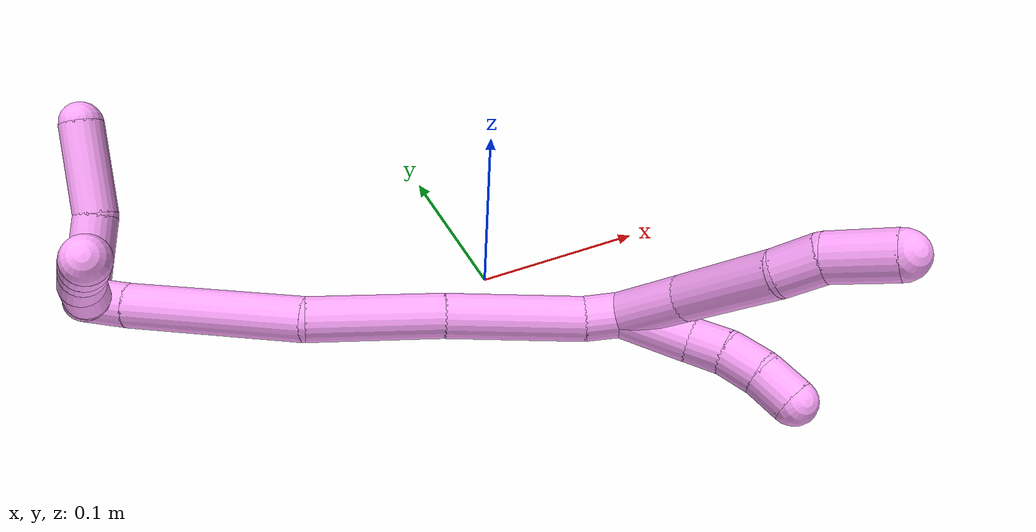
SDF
<sdf version="1.7">
 <world name="default">
  <model name="photoneo_s_sensor">
   <static>1</static>
   <pose>0 0 2 1.57079 1.57079 3.14159</pose>
   <link name="link">
    <inertial><mass>0.1</mass></inertial>
    <sensor name="sensor" type="depth">
     <update_rate>30</update_rate>
     <camera>
      <horizontal_fov>1.22</horizontal_fov>
      <image><width>1920</width><height>1200</height><format>B8G8R8</format></image>
      <clip><near>0.1</near><far>4</far></clip>
      <depth_camera><output>points</output></depth_camera>
     </camera>
     <plugin name="camera_plugin" filename="libgazebo_ros_depth_camera.so">
      <baseline>0.2</baseline>
      <alwaysOn>1</alwaysOn>
      <updateRate>0.0</updateRate>
      <cameraName>camera_ir</cameraName>
      <imageTopicName>/camera/color/image_raw</imageTopicName>
      <cameraInfoTopicName>/camera/color/camera_info</cameraInfoTopicName>
      <depthImageTopicName>/camera/depth/image_raw</depthImageTopicName>
      <depthImageCameraInfoTopicName>/camera/depth/camera_info</depthImageCameraInfoTopicName>
      <pointCloudTopicName>/camera/depth/points</pointCloudTopicName>
      <frameName>fr_optical</frameName>
      <pointCloudCutoff>0.1</pointCloudCutoff>
      <pointCloudCutoffMax>2.0</pointCloudCutoffMax>
      <distortionK1>0</distortionK1>
      <distortionK2>0</distortionK2>
      <distortionK3>0</distortionK3>
      <distortionT1>0</distortionT1>
      <distortionT2>0</distortionT2>
      <CxPrime>0</CxPrime>
      <Cx>0</Cx>
      <Cy>0</Cy>
      <focalLength>0</focalLength>
      <hackBaseline>0</hackBaseline>
     </plugin>
    </sensor>
   </link>
  </model>
  <model name="bin">
   <static>1</static>
   <link name="bottom">
    <collision name="collision-bottom">
     <pose>0 0 -0.01 0 -0 0</pose>
     <geometry><box><size>0.8 0.6 0.02</size></box></geometry>
     <surface>
      <friction><ode><mu>100</mu><mu2>100</mu2></ode></friction>
      <contact><collide_bitmask>65535</collide_bitmask></contact>
     </surface>
    </collision>
   </link>
   <link name="west_wall">
    <collision name="collision-west_wall">
     <pose>-0.41 0 0.1 0 -0 0</pose>
     <geometry><box><size>0.02 0.6 0.2</size></box></geometry>
     <surface>
      <friction><ode><mu>100</mu><mu2>100</mu2></ode></friction>
      <contact><collide_bitmask>65535</collide_bitmask></contact>
     </surface>
    </collision>
   </link>
   <link name="east_wall">
    <collision name="collision-east_wall">
     <pose>0.41 0 0.1 0 -0 0</pose>
     <geometry><box><size>0.02 0.6 0.2</size></box></geometry>
     <surface>
      <friction><ode><mu>100</mu><mu2>100</mu2></ode></friction>
      <contact><collide_bitmask>65535</collide_bitmask></contact>
     </surface>
    </collision>
   </link>
   <link name="south_wall">
    <collision name="collision-south_wall">
     <pose>0 -0.31 0.1 0 -0 0</pose>
     <geometry><box><size>0.8 0.02 0.2</size></box></geometry>
     <surface>
      <friction><ode><mu>100</mu><mu2>100</mu2></ode></friction>
      <contact><collide_bitmask>65535</collide_bitmask></contact>
     </surface>
    </collision>
   </link>
   <link name="north_wall">
    <collision name="collision-north_wall">
     <pose>0 0.31 0.1 0 -0 0</pose>
     <geometry><box><size>0.8 0.02 0.2</size></box></geometry>
     <surface>
      <friction><ode><mu>100</mu><mu2>100</mu2></ode></friction>
      <contact><collide_bitmask>65535</collide_bitmask></contact>
     </surface>
    </collision>
   </link>
  </model>
  <model name="4">
   <static>0</static>
   <link name="4">
    <collision name="collision-cylinder-e_1_2_8">
     <pose>0.006401 -0.008737 -0.016509 2.65485 0.330153 1.18193</pose>
     <geometry><cylinder><radius>0.0125</radius><length>0.03949</length></cylinder></geometry>
     <surface>
      <friction><ode><mu>1.16</mu><mu2>1.16</mu2><slip1>0</slip1><slip2>0</slip2></ode></friction>
      <contact><ode><kp>1e+06</kp><kd>1</kd><max_vel>0</max_vel><min_depth>0.001</min_depth></ode></contact>
     </surface>
    </collision>
    <visual name="visual-cylinder-e_1_2_8">
     <pose>0.006401 -0.008737 -0.016509 2.65485 0.330153 1.18193</pose>
     <geometry><cylinder><radius>0.0125</radius><length>0.03949</length></cylinder></geometry>
     <material><ambient>1 0.65098 0.996078 1</ambient></material>
    </visual>
    <collision name="collision-cylinder-e_2_8_9">
     <pose>0.020108 -0.02695 -0.057868 2.77726 0.268086 1.26384</pose>
     <geometry><cylinder><radius>0.0125</radius><length>0.055161</length></cylinder></geometry>
     <surface>
      <friction><ode><mu>1.16</mu><mu2>1.16</mu2><slip1>0</slip1><slip2>0</slip2></ode></friction>
      <contact><ode><kp>1e+06</kp><kd>1</kd><max_vel>0</max_vel><min_depth>0.001</min_depth></ode></contact>
     </surface>
    </collision>
    <visual name="visual-cylinder-e_2_8_9">
     <pose>0.020108 -0.02695 -0.057868 2.77726 0.268086 1.26384</pose>
     <geometry><cylinder><radius>0.0125</radius><length>0.055161</length></cylinder></geometry>
     <material><ambient>1 0.65098 0.996078 1</ambient></material>
    </visual>
    <collision name="collision-cylinder-e_3_9_10">
     <pose>0.030768 -0.042464 -0.091494 2.53907 0.30507 0.918883</pose>
     <geometry><cylinder><radius>0.0125</radius><length>0.022335</length></cylinder></geometry>
     <surface>
      <friction><ode><mu>1.16</mu><mu2>1.16</mu2><slip1>0</slip1><slip2>0</slip2></ode></friction>
      <contact><ode><kp>1e+06</kp><kd>1</kd><max_vel>0</max_vel><min_depth>0.001</min_depth></ode></contact>
     </surface>
    </collision>
    <visual name="visual-cylinder-e_3_9_10">
     <pose>0.030768 -0.042464 -0.091494 2.53907 0.30507 0.918883</pose>
     <geometry><cylinder><radius>0.0125</radius><length>0.022335</length></cylinder></geometry>
     <material><ambient>1 0.65098 0.996078 1</ambient></material>
    </visual>
    <collision name="collision-cylinder-e_4_10_6">
     <pose>0.043441 -0.055069 -0.112207 2.6385 0.599859 1.75489</pose>
     <geometry><cylinder><radius>0.0125</radius><length>0.033014</length></cylinder></geometry>
     <surface>
      <friction><ode><mu>1.16</mu><mu2>1.16</mu2><slip1>0</slip1><slip2>0</slip2></ode></friction>
      <contact><ode><kp>1e+06</kp><kd>1</kd><max_vel>0</max_vel><min_depth>0.001</min_depth></ode></contact>
     </surface>
    </collision>
    <visual name="visual-cylinder-e_4_10_6">
     <pose>0.043441 -0.055069 -0.112207 2.6385 0.599859 1.75489</pose>
     <geometry><cylinder><radius>0.0125</radius><length>0.033014</length></cylinder></geometry>
     <material><ambient>1 0.65098 0.996078 1</ambient></material>
    </visual>
    <collision name="collision-cylinder-e_1_2_11">
     <pose>0.017269 -0.005547 -0.007539 2.50728 1.07411 2.13398</pose>
     <geometry><cylinder><radius>0.0125</radius><length>0.039285</length></cylinder></geometry>
     <surface>
      <friction><ode><mu>1.16</mu><mu2>1.16</mu2><slip1>0</slip1><slip2>0</slip2></ode></friction>
      <contact><ode><kp>1e+06</kp><kd>1</kd><max_vel>0</max_vel><min_depth>0.001</min_depth></ode></contact>
     </surface>
    </collision>
    <visual name="visual-cylinder-e_1_2_11">
     <pose>0.017269 -0.005547 -0.007539 2.50728 1.07411 2.13398</pose>
     <geometry><cylinder><radius>0.0125</radius><length>0.039285</length></cylinder></geometry>
     <material><ambient>1 0.65098 0.996078 1</ambient></material>
    </visual>
    <collision name="collision-cylinder-e_2_11_12">
     <pose>0.042304 -0.012805 -0.02132 2.874 0.876086 2.58194</pose>
     <geometry><cylinder><radius>0.0125</radius><length>0.020218</length></cylinder></geometry>
     <surface>
      <friction><ode><mu>1.16</mu><mu2>1.16</mu2><slip1>0</slip1><slip2>0</slip2></ode></friction>
      <contact><ode><kp>1e+06</kp><kd>1</kd><max_vel>0</max_vel><min_depth>0.001</min_depth></ode></contact>
     </surface>
    </collision>
    <visual name="visual-cylinder-e_2_11_12">
     <pose>0.042304 -0.012805 -0.02132 2.874 0.876086 2.58194</pose>
     <geometry><cylinder><radius>0.0125</radius><length>0.020218</length></cylinder></geometry>
     <material><ambient>1 0.65098 0.996078 1</ambient></material>
    </visual>
    <collision name="collision-cylinder-e_3_12_13">
     <pose>0.058442 -0.014179 -0.033355 -3.08356 0.964599 -3.03082</pose>
     <geometry><cylinder><radius>0.0125</radius><length>0.020373</length></cylinder></geometry>
     <surface>
      <friction><ode><mu>1.16</mu><mu2>1.16</mu2><slip1>0</slip1><slip2>0</slip2></ode></friction>
      <contact><ode><kp>1e+06</kp><kd>1</kd><max_vel>0</max_vel><min_depth>0.001</min_depth></ode></contact>
     </surface>
    </collision>
    <visual name="visual-cylinder-e_3_12_13">
     <pose>0.058442 -0.014179 -0.033355 -3.08356 0.964599 -3.03082</pose>
     <geometry><cylinder><radius>0.0125</radius><length>0.020373</length></cylinder></geometry>
     <material><ambient>1 0.65098 0.996078 1</ambient></material>
    </visual>
    <collision name="collision-cylinder-e_4_13_5">
     <pose>0.075723 -0.012141 -0.043504 -2.76914 1.08756 -2.5374</pose>
     <geometry><cylinder><radius>0.0125</radius><length>0.020124</length></cylinder></geometry>
     <surface>
      <friction><ode><mu>1.16</mu><mu2>1.16</mu2><slip1>0</slip1><slip2>0</slip2></ode></friction>
      <contact><ode><kp>1e+06</kp><kd>1</kd><max_vel>0</max_vel><min_depth>0.001</min_depth></ode></contact>
     </surface>
    </collision>
    <visual name="visual-cylinder-e_4_13_5">
     <pose>0.075723 -0.012141 -0.043504 -2.76914 1.08756 -2.5374</pose>
     <geometry><cylinder><radius>0.0125</radius><length>0.020124</length></cylinder></geometry>
     <material><ambient>1 0.65098 0.996078 1</ambient></material>
    </visual>
    <collision name="collision-cylinder-e_1_2_14">
     <pose>-0.006287 0.006942 0.003644 -1.08746 -0.675884 0.418653</pose>
     <geometry><cylinder><radius>0.0125</radius><length>0.0201</length></cylinder></geometry>
     <surface>
      <friction><ode><mu>1.16</mu><mu2>1.16</mu2><slip1>0</slip1><slip2>0</slip2></ode></friction>
      <contact><ode><kp>1e+06</kp><kd>1</kd><max_vel>0</max_vel><min_depth>0.001</min_depth></ode></contact>
     </surface>
    </collision>
    <visual name="visual-cylinder-e_1_2_14">
     <pose>-0.006287 0.006942 0.003644 -1.08746 -0.675884 0.418653</pose>
     <geometry><cylinder><radius>0.0125</radius><length>0.0201</length></cylinder></geometry>
     <material><ambient>1 0.65098 0.996078 1</ambient></material>
    </visual>
    <collision name="collision-cylinder-e_2_14_15">
     <pose>-0.040895 0.038512 0.014761 -1.27616 -0.833169 0.634116</pose>
     <geometry><cylinder><radius>0.0125</radius><length>0.076536</length></cylinder></geometry>
     <surface>
      <friction><ode><mu>1.16</mu><mu2>1.16</mu2><slip1>0</slip1><slip2>0</slip2></ode></friction>
      <contact><ode><kp>1e+06</kp><kd>1</kd><max_vel>0</max_vel><min_depth>0.001</min_depth></ode></contact>
     </surface>
    </collision>
    <visual name="visual-cylinder-e_2_14_15">
     <pose>-0.040895 0.038512 0.014761 -1.27616 -0.833169 0.634116</pose>
     <geometry><cylinder><radius>0.0125</radius><length>0.076536</length></cylinder></geometry>
     <material><ambient>1 0.65098 0.996078 1</ambient></material>
    </visual>
    <collision name="collision-cylinder-e_3_15_16">
     <pose>-0.095945 0.089631 0.026337 -1.41717 -0.783949 0.680969</pose>
     <geometry><cylinder><radius>0.0125</radius><length>0.075712</length></cylinder></geometry>
     <surface>
      <friction><ode><mu>1.16</mu><mu2>1.16</mu2><slip1>0</slip1><slip2>0</slip2></ode></friction>
      <contact><ode><kp>1e+06</kp><kd>1</kd><max_vel>0</max_vel><min_depth>0.001</min_depth></ode></contact>
     </surface>
    </collision>
    <visual name="visual-cylinder-e_3_15_16">
     <pose>-0.095945 0.089631 0.026337 -1.41717 -0.783949 0.680969</pose>
     <geometry><cylinder><radius>0.0125</radius><length>0.075712</length></cylinder></geometry>
     <material><ambient>1 0.65098 0.996078 1</ambient></material>
    </visual>
    <collision name="collision-cylinder-e_4_16_17">
     <pose>-0.160975 0.143914 0.048708 -0.989299 -0.85573 0.482376</pose>
     <geometry><cylinder><radius>0.0125</radius><length>0.101449</length></cylinder></geometry>
     <surface>
      <friction><ode><mu>1.16</mu><mu2>1.16</mu2><slip1>0</slip1><slip2>0</slip2></ode></friction>
      <contact><ode><kp>1e+06</kp><kd>1</kd><max_vel>0</max_vel><min_depth>0.001</min_depth></ode></contact>
     </surface>
    </collision>
    <visual name="visual-cylinder-e_4_16_17">
     <pose>-0.160975 0.143914 0.048708 -0.989299 -0.85573 0.482376</pose>
     <geometry><cylinder><radius>0.0125</radius><length>0.101449</length></cylinder></geometry>
     <material><ambient>1 0.65098 0.996078 1</ambient></material>
    </visual>
    <collision name="collision-cylinder-e_5_17_1">
     <pose>-0.209659 0.178491 0.071192 -1.01477 -0.915111 0.534398</pose>
     <geometry><cylinder><radius>0.0125</radius><length>0.026203</length></cylinder></geometry>
     <surface>
      <friction><ode><mu>1.16</mu><mu2>1.16</mu2><slip1>0</slip1><slip2>0</slip2></ode></friction>
      <contact><ode><kp>1e+06</kp><kd>1</kd><max_vel>0</max_vel><min_depth>0.001</min_depth></ode></contact>
     </surface>
    </collision>
    <visual name="visual-cylinder-e_5_17_1">
     <pose>-0.209659 0.178491 0.071192 -1.01477 -0.915111 0.534398</pose>
     <geometry><cylinder><radius>0.0125</radius><length>0.026203</length></cylinder></geometry>
     <material><ambient>1 0.65098 0.996078 1</ambient></material>
    </visual>
    <collision name="collision-cylinder-e_1_1_18">
     <pose>-0.218168 0.184823 0.065596 3.0955 0.18867 2.66365</pose>
     <geometry><cylinder><radius>0.0125</radius><length>0.02</length></cylinder></geometry>
     <surface>
      <friction><ode><mu>1.16</mu><mu2>1.16</mu2><slip1>0</slip1><slip2>0</slip2></ode></friction>
      <contact><ode><kp>1e+06</kp><kd>1</kd><max_vel>0</max_vel><min_depth>0.001</min_depth></ode></contact>
     </surface>
    </collision>
    <visual name="visual-cylinder-e_1_1_18">
     <pose>-0.218168 0.184823 0.065596 3.0955 0.18867 2.66365</pose>
     <geometry><cylinder><radius>0.0125</radius><length>0.02</length></cylinder></geometry>
     <material><ambient>1 0.65098 0.996078 1</ambient></material>
    </visual>
    <collision name="collision-cylinder-e_2_18_19">
     <pose>-0.217576 0.183347 0.045919 3.0382 -0.128753 -1.7889</pose>
     <geometry><cylinder><radius>0.0125</radius><length>0.02</length></cylinder></geometry>
     <surface>
      <friction><ode><mu>1.16</mu><mu2>1.16</mu2><slip1>0</slip1><slip2>0</slip2></ode></friction>
      <contact><ode><kp>1e+06</kp><kd>1</kd><max_vel>0</max_vel><min_depth>0.001</min_depth></ode></contact>
     </surface>
    </collision>
    <visual name="visual-cylinder-e_2_18_19">
     <pose>-0.217576 0.183347 0.045919 3.0382 -0.128753 -1.7889</pose>
     <geometry><cylinder><radius>0.0125</radius><length>0.02</length></cylinder></geometry>
     <material><ambient>1 0.65098 0.996078 1</ambient></material>
    </visual>
    <collision name="collision-cylinder-e_3_19_20">
     <pose>-0.21857 0.180501 0.026227 2.9582 0.029018 0.313021</pose>
     <geometry><cylinder><radius>0.0125</radius><length>0.02</length></cylinder></geometry>
     <surface>
      <friction><ode><mu>1.16</mu><mu2>1.16</mu2><slip1>0</slip1><slip2>0</slip2></ode></friction>
      <contact><ode><kp>1e+06</kp><kd>1</kd><max_vel>0</max_vel><min_depth>0.001</min_depth></ode></contact>
     </surface>
    </collision>
    <visual name="visual-cylinder-e_3_19_20">
     <pose>-0.21857 0.180501 0.026227 2.9582 0.029018 0.313021</pose>
     <geometry><cylinder><radius>0.0125</radius><length>0.02</length></cylinder></geometry>
     <material><ambient>1 0.65098 0.996078 1</ambient></material>
    </visual>
    <collision name="collision-cylinder-e_4_20_21">
     <pose>-0.21692 0.177907 0.006522 3.0637 0.13639 2.10474</pose>
     <geometry><cylinder><radius>0.0125</radius><length>0.02</length></cylinder></geometry>
     <surface>
      <friction><ode><mu>1.16</mu><mu2>1.16</mu2><slip1>0</slip1><slip2>0</slip2></ode></friction>
      <contact><ode><kp>1e+06</kp><kd>1</kd><max_vel>0</max_vel><min_depth>0.001</min_depth></ode></contact>
     </surface>
    </collision>
    <visual name="visual-cylinder-e_4_20_21">
     <pose>-0.21692 0.177907 0.006522 3.0637 0.13639 2.10474</pose>
     <geometry><cylinder><radius>0.0125</radius><length>0.02</length></cylinder></geometry>
     <material><ambient>1 0.65098 0.996078 1</ambient></material>
    </visual>
    <collision name="collision-cylinder-e_5_21_4">
     <pose>-0.214174 0.176347 -0.013227 3.06182 0.139129 2.10127</pose>
     <geometry><cylinder><radius>0.0125</radius><length>0.02</length></cylinder></geometry>
     <surface>
      <friction><ode><mu>1.16</mu><mu2>1.16</mu2><slip1>0</slip1><slip2>0</slip2></ode></friction>
      <contact><ode><kp>1e+06</kp><kd>1</kd><max_vel>0</max_vel><min_depth>0.001</min_depth></ode></contact>
     </surface>
    </collision>
    <visual name="visual-cylinder-e_5_21_4">
     <pose>-0.214174 0.176347 -0.013227 3.06182 0.139129 2.10127</pose>
     <geometry><cylinder><radius>0.0125</radius><length>0.02</length></cylinder></geometry>
     <material><ambient>1 0.65098 0.996078 1</ambient></material>
    </visual>
    <collision name="collision-cylinder-e_1_1_22">
     <pose>-0.234585 0.167019 0.071481 1.78264 -0.661628 -0.803998</pose>
     <geometry><cylinder><radius>0.0125</radius><length>0.047338</length></cylinder></geometry>
     <surface>
      <friction><ode><mu>1.16</mu><mu2>1.16</mu2><slip1>0</slip1><slip2>0</slip2></ode></friction>
      <contact><ode><kp>1e+06</kp><kd>1</kd><max_vel>0</max_vel><min_depth>0.001</min_depth></ode></contact>
     </surface>
    </collision>
    <visual name="visual-cylinder-e_1_1_22">
     <pose>-0.234585 0.167019 0.071481 1.78264 -0.661628 -0.803998</pose>
     <geometry><cylinder><radius>0.0125</radius><length>0.047338</length></cylinder></geometry>
     <material><ambient>1 0.65098 0.996078 1</ambient></material>
    </visual>
    <collision name="collision-cylinder-e_2_22_3">
     <pose>-0.27023 0.133449 0.063878 1.80647 -0.929703 -1.13322</pose>
     <geometry><cylinder><radius>0.0125</radius><length>0.052662</length></cylinder></geometry>
     <surface>
      <friction><ode><mu>1.16</mu><mu2>1.16</mu2><slip1>0</slip1><slip2>0</slip2></ode></friction>
      <contact><ode><kp>1e+06</kp><kd>1</kd><max_vel>0</max_vel><min_depth>0.001</min_depth></ode></contact>
     </surface>
    </collision>
    <visual name="visual-cylinder-e_2_22_3">
     <pose>-0.27023 0.133449 0.063878 1.80647 -0.929703 -1.13322</pose>
     <geometry><cylinder><radius>0.0125</radius><length>0.052662</length></cylinder></geometry>
     <material><ambient>1 0.65098 0.996078 1</ambient></material>
    </visual>
    <collision name="collision-sphere-3">
     <pose>-0.291333 0.118136 0.060201 0 -0 0</pose>
     <geometry><sphere><radius>0.0125</radius></sphere></geometry>
     <surface>
      <friction><ode><mu>1.16</mu><mu2>1.16</mu2><slip1>0</slip1><slip2>0</slip2></ode></friction>
      <contact><ode><kp>1e+06</kp><kd>1</kd><max_vel>0</max_vel><min_depth>0.001</min_depth></ode></contact>
     </surface>
    </collision>
    <visual name="visual-sphere-3">
     <pose>-0.291333 0.118136 0.060201 0 -0 0</pose>
     <geometry><sphere><radius>0.0125</radius></sphere></geometry>
     <material><ambient>1 0.65098 0.996078 1</ambient></material>
    </visual>
    <collision name="collision-sphere-22">
     <pose>-0.249128 0.148762 0.067555 0 -0 0</pose>
     <geometry><sphere><radius>0.0125</radius></sphere></geometry>
     <surface>
      <friction><ode><mu>1.16</mu><mu2>1.16</mu2><slip1>0</slip1><slip2>0</slip2></ode></friction>
      <contact><ode><kp>1e+06</kp><kd>1</kd><max_vel>0</max_vel><min_depth>0.001</min_depth></ode></contact>
     </surface>
    </collision>
    <visual name="visual-sphere-22">
     <pose>-0.249128 0.148762 0.067555 0 -0 0</pose>
     <geometry><sphere><radius>0.0125</radius></sphere></geometry>
     <material><ambient>1 0.65098 0.996078 1</ambient></material>
    </visual>
    <collision name="collision-sphere-4">
     <pose>-0.212787 0.175558 -0.023099 0 -0 0</pose>
     <geometry><sphere><radius>0.0125</radius></sphere></geometry>
     <surface>
      <friction><ode><mu>1.16</mu><mu2>1.16</mu2><slip1>0</slip1><slip2>0</slip2></ode></friction>
      <contact><ode><kp>1e+06</kp><kd>1</kd><max_vel>0</max_vel><min_depth>0.001</min_depth></ode></contact>
     </surface>
    </collision>
    <visual name="visual-sphere-4">
     <pose>-0.212787 0.175558 -0.023099 0 -0 0</pose>
     <geometry><sphere><radius>0.0125</radius></sphere></geometry>
     <material><ambient>1 0.65098 0.996078 1</ambient></material>
    </visual>
    <collision name="collision-sphere-21">
     <pose>-0.21556 0.177136 -0.003355 0 -0 0</pose>
     <geometry><sphere><radius>0.0125</radius></sphere></geometry>
     <surface>
      <friction><ode><mu>1.16</mu><mu2>1.16</mu2><slip1>0</slip1><slip2>0</slip2></ode></friction>
      <contact><ode><kp>1e+06</kp><kd>1</kd><max_vel>0</max_vel><min_depth>0.001</min_depth></ode></contact>
     </surface>
    </collision>
    <visual name="visual-sphere-21">
     <pose>-0.21556 0.177136 -0.003355 0 -0 0</pose>
     <geometry><sphere><radius>0.0125</radius></sphere></geometry>
     <material><ambient>1 0.65098 0.996078 1</ambient></material>
    </visual>
    <collision name="collision-sphere-20">
     <pose>-0.21828 0.178678 0.016399 0 -0 0</pose>
     <geometry><sphere><radius>0.0125</radius></sphere></geometry>
     <surface>
      <friction><ode><mu>1.16</mu><mu2>1.16</mu2><slip1>0</slip1><slip2>0</slip2></ode></friction>
      <contact><ode><kp>1e+06</kp><kd>1</kd><max_vel>0</max_vel><min_depth>0.001</min_depth></ode></contact>
     </surface>
    </collision>
    <visual name="visual-sphere-20">
     <pose>-0.21828 0.178678 0.016399 0 -0 0</pose>
     <geometry><sphere><radius>0.0125</radius></sphere></geometry>
     <material><ambient>1 0.65098 0.996078 1</ambient></material>
    </visual>
    <collision name="collision-sphere-11">
     <pose>0.034538 -0.011094 -0.015078 0 -0 0</pose>
     <geometry><sphere><radius>0.0125</radius></sphere></geometry>
     <surface>
      <friction><ode><mu>1.16</mu><mu2>1.16</mu2><slip1>0</slip1><slip2>0</slip2></ode></friction>
      <contact><ode><kp>1e+06</kp><kd>1</kd><max_vel>0</max_vel><min_depth>0.001</min_depth></ode></contact>
     </surface>
    </collision>
    <visual name="visual-sphere-11">
     <pose>0.034538 -0.011094 -0.015078 0 -0 0</pose>
     <geometry><sphere><radius>0.0125</radius></sphere></geometry>
     <material><ambient>1 0.65098 0.996078 1</ambient></material>
    </visual>
    <collision name="collision-sphere-6">
     <pose>0.052759 -0.061638 -0.124144 0 -0 0</pose>
     <geometry><sphere><radius>0.0125</radius></sphere></geometry>
     <surface>
      <friction><ode><mu>1.16</mu><mu2>1.16</mu2><slip1>0</slip1><slip2>0</slip2></ode></friction>
      <contact><ode><kp>1e+06</kp><kd>1</kd><max_vel>0</max_vel><min_depth>0.001</min_depth></ode></contact>
     </surface>
    </collision>
    <visual name="visual-sphere-6">
     <pose>0.052759 -0.061638 -0.124144 0 -0 0</pose>
     <geometry><sphere><radius>0.0125</radius></sphere></geometry>
     <material><ambient>1 0.65098 0.996078 1</ambient></material>
    </visual>
    <collision name="collision-sphere-10">
     <pose>0.034122 -0.0485 -0.10027 0 -0 0</pose>
     <geometry><sphere><radius>0.0125</radius></sphere></geometry>
     <surface>
      <friction><ode><mu>1.16</mu><mu2>1.16</mu2><slip1>0</slip1><slip2>0</slip2></ode></friction>
      <contact><ode><kp>1e+06</kp><kd>1</kd><max_vel>0</max_vel><min_depth>0.001</min_depth></ode></contact>
     </surface>
    </collision>
    <visual name="visual-sphere-10">
     <pose>0.034122 -0.0485 -0.10027 0 -0 0</pose>
     <geometry><sphere><radius>0.0125</radius></sphere></geometry>
     <material><ambient>1 0.65098 0.996078 1</ambient></material>
    </visual>
    <collision name="collision-sphere-9">
     <pose>0.027414 -0.036427 -0.082718 0 -0 0</pose>
     <geometry><sphere><radius>0.0125</radius></sphere></geometry>
     <surface>
      <friction><ode><mu>1.16</mu><mu2>1.16</mu2><slip1>0</slip1><slip2>0</slip2></ode></friction>
      <contact><ode><kp>1e+06</kp><kd>1</kd><max_vel>0</max_vel><min_depth>0.001</min_depth></ode></contact>
     </surface>
    </collision>
    <visual name="visual-sphere-9">
     <pose>0.027414 -0.036427 -0.082718 0 -0 0</pose>
     <geometry><sphere><radius>0.0125</radius></sphere></geometry>
     <material><ambient>1 0.65098 0.996078 1</ambient></material>
    </visual>
    <collision name="collision-sphere-2">
     <geometry><sphere><radius>0.0125</radius></sphere></geometry>
     <surface>
      <friction><ode><mu>1.16</mu><mu2>1.16</mu2><slip1>0</slip1><slip2>0</slip2></ode></friction>
      <contact><ode><kp>1e+06</kp><kd>1</kd><max_vel>0</max_vel><min_depth>0.001</min_depth></ode></contact>
     </surface>
    </collision>
    <visual name="visual-sphere-2">
     <geometry><sphere><radius>0.0125</radius></sphere></geometry>
     <material><ambient>1 0.65098 0.996078 1</ambient></material>
    </visual>
    <collision name="collision-sphere-19">
     <pose>-0.21886 0.182324 0.036055 0 -0 0</pose>
     <geometry><sphere><radius>0.0125</radius></sphere></geometry>
     <surface>
      <friction><ode><mu>1.16</mu><mu2>1.16</mu2><slip1>0</slip1><slip2>0</slip2></ode></friction>
      <contact><ode><kp>1e+06</kp><kd>1</kd><max_vel>0</max_vel><min_depth>0.001</min_depth></ode></contact>
     </surface>
    </collision>
    <visual name="visual-sphere-19">
     <pose>-0.21886 0.182324 0.036055 0 -0 0</pose>
     <geometry><sphere><radius>0.0125</radius></sphere></geometry>
     <material><ambient>1 0.65098 0.996078 1</ambient></material>
    </visual>
    <collision name="collision-sphere-8">
     <pose>0.012802 -0.017474 -0.033019 0 -0 0</pose>
     <geometry><sphere><radius>0.0125</radius></sphere></geometry>
     <surface>
      <friction><ode><mu>1.16</mu><mu2>1.16</mu2><slip1>0</slip1><slip2>0</slip2></ode></friction>
      <contact><ode><kp>1e+06</kp><kd>1</kd><max_vel>0</max_vel><min_depth>0.001</min_depth></ode></contact>
     </surface>
    </collision>
    <visual name="visual-sphere-8">
     <pose>0.012802 -0.017474 -0.033019 0 -0 0</pose>
     <geometry><sphere><radius>0.0125</radius></sphere></geometry>
     <material><ambient>1 0.65098 0.996078 1</ambient></material>
    </visual>
    <collision name="collision-sphere-12">
     <pose>0.05007 -0.014516 -0.027561 0 -0 0</pose>
     <geometry><sphere><radius>0.0125</radius></sphere></geometry>
     <surface>
      <friction><ode><mu>1.16</mu><mu2>1.16</mu2><slip1>0</slip1><slip2>0</slip2></ode></friction>
      <contact><ode><kp>1e+06</kp><kd>1</kd><max_vel>0</max_vel><min_depth>0.001</min_depth></ode></contact>
     </surface>
    </collision>
    <visual name="visual-sphere-12">
     <pose>0.05007 -0.014516 -0.027561 0 -0 0</pose>
     <geometry><sphere><radius>0.0125</radius></sphere></geometry>
     <material><ambient>1 0.65098 0.996078 1</ambient></material>
    </visual>
    <collision name="collision-sphere-13">
     <pose>0.066814 -0.013843 -0.039149 0 -0 0</pose>
     <geometry><sphere><radius>0.0125</radius></sphere></geometry>
     <surface>
      <friction><ode><mu>1.16</mu><mu2>1.16</mu2><slip1>0</slip1><slip2>0</slip2></ode></friction>
      <contact><ode><kp>1e+06</kp><kd>1</kd><max_vel>0</max_vel><min_depth>0.001</min_depth></ode></contact>
     </surface>
    </collision>
    <visual name="visual-sphere-13">
     <pose>0.066814 -0.013843 -0.039149 0 -0 0</pose>
     <geometry><sphere><radius>0.0125</radius></sphere></geometry>
     <material><ambient>1 0.65098 0.996078 1</ambient></material>
    </visual>
    <collision name="collision-sphere-5">
     <pose>0.084633 -0.01044 -0.047858 0 -0 0</pose>
     <geometry><sphere><radius>0.0125</radius></sphere></geometry>
     <surface>
      <friction><ode><mu>1.16</mu><mu2>1.16</mu2><slip1>0</slip1><slip2>0</slip2></ode></friction>
      <contact><ode><kp>1e+06</kp><kd>1</kd><max_vel>0</max_vel><min_depth>0.001</min_depth></ode></contact>
     </surface>
    </collision>
    <visual name="visual-sphere-5">
     <pose>0.084633 -0.01044 -0.047858 0 -0 0</pose>
     <geometry><sphere><radius>0.0125</radius></sphere></geometry>
     <material><ambient>1 0.65098 0.996078 1</ambient></material>
    </visual>
    <collision name="collision-sphere-14">
     <pose>-0.012574 0.013885 0.007288 0 -0 0</pose>
     <geometry><sphere><radius>0.0125</radius></sphere></geometry>
     <surface>
      <friction><ode><mu>1.16</mu><mu2>1.16</mu2><slip1>0</slip1><slip2>0</slip2></ode></friction>
      <contact><ode><kp>1e+06</kp><kd>1</kd><max_vel>0</max_vel><min_depth>0.001</min_depth></ode></contact>
     </surface>
    </collision>
    <visual name="visual-sphere-14">
     <pose>-0.012574 0.013885 0.007288 0 -0 0</pose>
     <geometry><sphere><radius>0.0125</radius></sphere></geometry>
     <material><ambient>1 0.65098 0.996078 1</ambient></material>
    </visual>
    <collision name="collision-sphere-15">
     <pose>-0.069216 0.063139 0.022235 0 -0 0</pose>
     <geometry><sphere><radius>0.0125</radius></sphere></geometry>
     <surface>
      <friction><ode><mu>1.16</mu><mu2>1.16</mu2><slip1>0</slip1><slip2>0</slip2></ode></friction>
      <contact><ode><kp>1e+06</kp><kd>1</kd><max_vel>0</max_vel><min_depth>0.001</min_depth></ode></contact>
     </surface>
    </collision>
    <visual name="visual-sphere-15">
     <pose>-0.069216 0.063139 0.022235 0 -0 0</pose>
     <geometry><sphere><radius>0.0125</radius></sphere></geometry>
     <material><ambient>1 0.65098 0.996078 1</ambient></material>
    </visual>
    <collision name="collision-sphere-16">
     <pose>-0.122675 0.116122 0.030439 0 -0 0</pose>
     <geometry><sphere><radius>0.0125</radius></sphere></geometry>
     <surface>
      <friction><ode><mu>1.16</mu><mu2>1.16</mu2><slip1>0</slip1><slip2>0</slip2></ode></friction>
      <contact><ode><kp>1e+06</kp><kd>1</kd><max_vel>0</max_vel><min_depth>0.001</min_depth></ode></contact>
     </surface>
    </collision>
    <visual name="visual-sphere-16">
     <pose>-0.122675 0.116122 0.030439 0 -0 0</pose>
     <geometry><sphere><radius>0.0125</radius></sphere></geometry>
     <material><ambient>1 0.65098 0.996078 1</ambient></material>
    </visual>
    <collision name="collision-sphere-17">
     <pose>-0.199274 0.171707 0.066976 0 -0 0</pose>
     <geometry><sphere><radius>0.0125</radius></sphere></geometry>
     <surface>
      <friction><ode><mu>1.16</mu><mu2>1.16</mu2><slip1>0</slip1><slip2>0</slip2></ode></friction>
      <contact><ode><kp>1e+06</kp><kd>1</kd><max_vel>0</max_vel><min_depth>0.001</min_depth></ode></contact>
     </surface>
    </collision>
    <visual name="visual-sphere-17">
     <pose>-0.199274 0.171707 0.066976 0 -0 0</pose>
     <geometry><sphere><radius>0.0125</radius></sphere></geometry>
     <material><ambient>1 0.65098 0.996078 1</ambient></material>
    </visual>
    <collision name="collision-sphere-1">
     <pose>-0.220043 0.185276 0.075408 0 -0 0</pose>
     <geometry><sphere><radius>0.0125</radius></sphere></geometry>
     <surface>
      <friction><ode><mu>1.16</mu><mu2>1.16</mu2><slip1>0</slip1><slip2>0</slip2></ode></friction>
      <contact><ode><kp>1e+06</kp><kd>1</kd><max_vel>0</max_vel><min_depth>0.001</min_depth></ode></contact>
     </surface>
    </collision>
    <visual name="visual-sphere-1">
     <pose>-0.220043 0.185276 0.075408 0 -0 0</pose>
     <geometry><sphere><radius>0.0125</radius></sphere></geometry>
     <material><ambient>1 0.65098 0.996078 1</ambient></material>
    </visual>
    <collision name="collision-sphere-18">
     <pose>-0.216292 0.184371 0.055784 0 -0 0</pose>
     <geometry><sphere><radius>0.0125</radius></sphere></geometry>
     <surface>
      <friction><ode><mu>1.16</mu><mu2>1.16</mu2><slip1>0</slip1><slip2>0</slip2></ode></friction>
      <contact><ode><kp>1e+06</kp><kd>1</kd><max_vel>0</max_vel><min_depth>0.001</min_depth></ode></contact>
     </surface>
    </collision>
    <visual name="visual-sphere-18">
     <pose>-0.216292 0.184371 0.055784 0 -0 0</pose>
     <geometry><sphere><radius>0.0125</radius></sphere></geometry>
     <material><ambient>1 0.65098 0.996078 1</ambient></material>
    </visual>
    <inertial>
     <pose>-0.095543 0.075379 0.009997 0 -0 0</pose>
     <mass>0.75</mass>
     <inertia>
      <ixx>0.000178</ixx>
      <ixy>0</ixy>
      <ixz>0</ixz>
      <iyy>0.000224</iyy>
      <iyz>0</iyz>
      <izz>3.6e-05</izz>
     </inertia>
    </inertial>
   </link>
   <pose>0.048452 -0.06946 0.014859 -2.75722 0.555364 -0.964422</pose>
  </model>
 </world>
</sdf>
